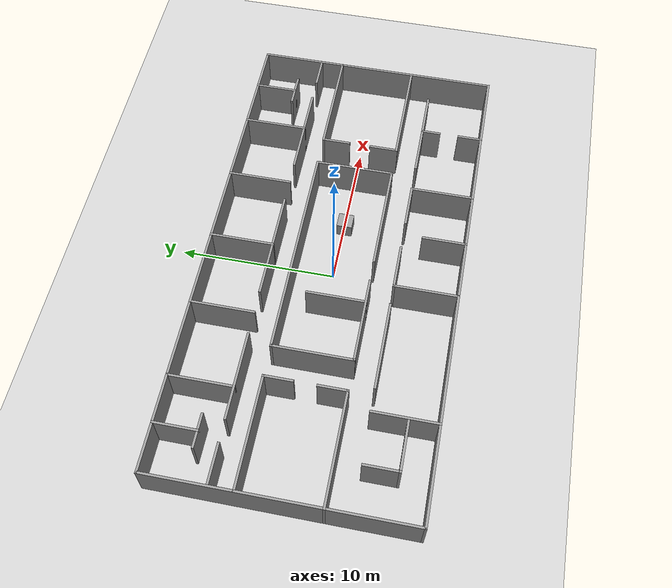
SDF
<sdf version="1.6">
 <world name="default">
  <light name="sun" type="directional">
   <pose>0 0 10 0 -0 0</pose>
   <diffuse>0.8 0.8 0.8 1</diffuse>
   <specular>0.1 0.1 0.1 1</specular>
   <attenuation>
    <range>1000</range>
    <constant>0.9</constant>
    <linear>0.01</linear>
    <quadratic>0.001</quadratic>
   </attenuation>
   <direction>-0.5 0.5 -1</direction>
  </light>
  <model name="ground_plane">
   <static>1</static>
   <link name="link">
    <collision name="collision">
     <geometry><plane><normal>0 0 1</normal><size>100 100</size></plane></geometry>
     <surface><friction><ode><mu>100</mu><mu2>50</mu2></ode></friction></surface>
    </collision>
    <visual name="visual">
     <cast_shadows>0</cast_shadows>
     <geometry><plane><normal>0 0 1</normal><size>100 100</size></plane></geometry>
     <material>
      <script><uri>file://media/materials/scripts/gazebo.material</uri><name>Gazebo/Grey</name></script>
     </material>
    </visual>
   </link>
  </model>
  <gravity>0 0 -9.8</gravity>
  <magnetic_field>6e-06 2.3e-05 -4.2e-05</magnetic_field>
  <atmosphere type="adiabatic"/>
  <physics name="default_physics" default="0" type="ode">
   <max_step_size>0.001</max_step_size>
   <real_time_factor>1</real_time_factor>
   <real_time_update_rate>1000</real_time_update_rate>
  </physics>
  <scene><ambient>0.4 0.4 0.4 1</ambient><background>0.7 0.7 0.7 1</background><shadows>1</shadows></scene>
  <spherical_coordinates>
   <surface_model>EARTH_WGS84</surface_model>
   <latitude_deg>0</latitude_deg>
   <longitude_deg>0</longitude_deg>
   <elevation>0</elevation>
   <heading_deg>0</heading_deg>
  </spherical_coordinates>
  <model name="large">
   <pose>0.175655 -0.035416 0 0 -0 0</pose>
   <link name="Wall_0">
    <collision name="Wall_0_Collision">
     <geometry><box><size>32.15 0.15 2.5</size></box></geometry>
     <pose>0 0 1.25 0 -0 0</pose>
    </collision>
    <visual name="Wall_0_Visual">
     <pose>0 0 1.25 0 -0 0</pose>
     <geometry><box><size>32.15 0.15 2.5</size></box></geometry>
     <material>
      <script><uri>file://media/materials/scripts/gazebo.material</uri><name>Gazebo/Grey</name></script>
      <ambient>1 1 1 1</ambient>
     </material>
    </visual>
    <pose>0 8 0 0 -0 0</pose>
   </link>
   <link name="Wall_1">
    <collision name="Wall_1_Collision">
     <geometry><box><size>16.15 0.15 2.5</size></box></geometry>
     <pose>0 0 1.25 0 -0 0</pose>
    </collision>
    <visual name="Wall_1_Visual">
     <pose>0 0 1.25 0 -0 0</pose>
     <geometry><box><size>16.15 0.15 2.5</size></box></geometry>
     <material>
      <script><uri>file://media/materials/scripts/gazebo.material</uri><name>Gazebo/Grey</name></script>
      <ambient>1 1 1 1</ambient>
     </material>
    </visual>
    <pose>16 0 0 0 0 -1.5708</pose>
   </link>
   <link name="Wall_11">
    <collision name="Wall_11_Collision">
     <geometry><box><size>4.15 0.15 2.5</size></box></geometry>
     <pose>0 0 1.25 0 -0 0</pose>
    </collision>
    <visual name="Wall_11_Visual">
     <pose>0 0 1.25 0 -0 0</pose>
     <geometry><box><size>4.15 0.15 2.5</size></box></geometry>
     <material>
      <script><uri>file://media/materials/scripts/gazebo.material</uri><name>Gazebo/Grey</name></script>
      <ambient>1 1 1 1</ambient>
     </material>
    </visual>
    <pose>5 6 0 0 0 -1.5708</pose>
   </link>
   <link name="Wall_13">
    <collision name="Wall_13_Collision">
     <geometry><box><size>4.15 0.15 2.5</size></box></geometry>
     <pose>0 0 1.25 0 -0 0</pose>
    </collision>
    <visual name="Wall_13_Visual">
     <pose>0 0 1.25 0 -0 0</pose>
     <geometry><box><size>4.15 0.15 2.5</size></box></geometry>
     <material>
      <script><uri>file://media/materials/scripts/gazebo.material</uri><name>Gazebo/Grey</name></script>
      <ambient>1 1 1 1</ambient>
     </material>
    </visual>
    <pose>9.711 6 0 0 0 -1.5708</pose>
   </link>
   <link name="Wall_15">
    <collision name="Wall_15_Collision">
     <geometry><box><size>4.15 0.15 2.5</size></box></geometry>
     <pose>0 0 1.25 0 -0 0</pose>
    </collision>
    <visual name="Wall_15_Visual">
     <pose>0 0 1.25 0 -0 0</pose>
     <geometry><box><size>4.15 0.15 2.5</size></box></geometry>
     <material>
      <script><uri>file://media/materials/scripts/gazebo.material</uri><name>Gazebo/Grey</name></script>
      <ambient>1 1 1 1</ambient>
     </material>
    </visual>
    <pose>-10 -6 0 0 0 -1.5708</pose>
   </link>
   <link name="Wall_17">
    <collision name="Wall_17_Collision">
     <geometry><box><size>4.15 0.15 2.5</size></box></geometry>
     <pose>0 0 1.25 0 -0 0</pose>
    </collision>
    <visual name="Wall_17_Visual">
     <pose>0 0 1.25 0 -0 0</pose>
     <geometry><box><size>4.15 0.15 2.5</size></box></geometry>
     <material>
      <script><uri>file://media/materials/scripts/gazebo.material</uri><name>Gazebo/Grey</name></script>
      <ambient>1 1 1 1</ambient>
     </material>
    </visual>
    <pose>-1.546 -6 0 0 0 -1.5708</pose>
   </link>
   <link name="Wall_19">
    <collision name="Wall_19_Collision">
     <geometry><box><size>4.15 0.15 2.5</size></box></geometry>
     <pose>0 0 1.25 0 -0 0</pose>
    </collision>
    <visual name="Wall_19_Visual">
     <pose>0 0 1.25 0 -0 0</pose>
     <geometry><box><size>4.15 0.15 2.5</size></box></geometry>
     <material>
      <script><uri>file://media/materials/scripts/gazebo.material</uri><name>Gazebo/Grey</name></script>
      <ambient>1 1 1 1</ambient>
     </material>
    </visual>
    <pose>6 -6 0 0 0 -1.5708</pose>
   </link>
   <link name="Wall_2">
    <collision name="Wall_2_Collision">
     <geometry><box><size>32.15 0.15 2.5</size></box></geometry>
     <pose>0 0 1.25 0 -0 0</pose>
    </collision>
    <visual name="Wall_2_Visual">
     <pose>0 0 1.25 0 -0 0</pose>
     <geometry><box><size>32.15 0.15 2.5</size></box></geometry>
     <material>
      <script><uri>file://media/materials/scripts/gazebo.material</uri><name>Gazebo/Grey</name></script>
      <ambient>1 1 1 1</ambient>
     </material>
    </visual>
    <pose>0 -8 0 0 -0 3.14159</pose>
   </link>
   <link name="Wall_21">
    <collision name="Wall_21_Collision">
     <geometry><box><size>2.8 0.15 2.5</size></box></geometry>
     <pose>0 0 1.25 0 -0 0</pose>
    </collision>
    <visual name="Wall_21_Visual">
     <pose>0 0 1.25 0 -0 0</pose>
     <geometry><box><size>2.8 0.15 2.5</size></box></geometry>
     <material>
      <script><uri>file://media/materials/scripts/gazebo.material</uri><name>Gazebo/Grey</name></script>
      <ambient>1 1 1 1</ambient>
     </material>
    </visual>
    <pose>-13 6.675 0 0 0 -1.5708</pose>
   </link>
   <link name="Wall_23">
    <collision name="Wall_23_Collision">
     <geometry><box><size>2.8 0.15 2.5</size></box></geometry>
     <pose>0 0 1.25 0 -0 0</pose>
    </collision>
    <visual name="Wall_23_Visual">
     <pose>0 0 1.25 0 -0 0</pose>
     <geometry><box><size>2.8 0.15 2.5</size></box></geometry>
     <material>
      <script><uri>file://media/materials/scripts/gazebo.material</uri><name>Gazebo/Grey</name></script>
      <ambient>1 1 1 1</ambient>
     </material>
    </visual>
    <pose>12.9648 6.675 0 0 0 -1.5708</pose>
   </link>
   <link name="Wall_25">
    <collision name="Wall_25_Collision">
     <geometry><box><size>1.65 0.15 2.5</size></box></geometry>
     <pose>0 0 1.25 0 -0 0</pose>
    </collision>
    <visual name="Wall_25_Visual">
     <pose>0 0 1.25 0 -0 0</pose>
     <geometry><box><size>1.65 0.15 2.5</size></box></geometry>
     <material>
      <script><uri>file://media/materials/scripts/gazebo.material</uri><name>Gazebo/Grey</name></script>
      <ambient>1 1 1 1</ambient>
     </material>
    </visual>
    <pose>11 -7.25 0 0 -0 1.5708</pose>
   </link>
   <link name="Wall_27">
    <collision name="Wall_27_Collision">
     <geometry><box><size>1.31 0.15 2.5</size></box></geometry>
     <pose>0 0 1.25 0 -0 0</pose>
    </collision>
    <visual name="Wall_27_Visual">
     <pose>0 0 1.25 0 -0 0</pose>
     <geometry><box><size>1.31 0.15 2.5</size></box></geometry>
     <material>
      <script><uri>file://media/materials/scripts/gazebo.material</uri><name>Gazebo/Grey</name></script>
      <ambient>1 1 1 1</ambient>
     </material>
    </visual>
    <pose>11 -4.58 0 0 -0 1.5708</pose>
   </link>
   <link name="Wall_29">
    <collision name="Wall_29_Collision">
     <geometry><box><size>2.15 0.15 2.5</size></box></geometry>
     <pose>0 0 1.25 0 -0 0</pose>
    </collision>
    <visual name="Wall_29_Visual">
     <pose>0 0 1.25 0 -0 0</pose>
     <geometry><box><size>2.15 0.15 2.5</size></box></geometry>
     <material>
      <script><uri>file://media/materials/scripts/gazebo.material</uri><name>Gazebo/Grey</name></script>
      <ambient>1 1 1 1</ambient>
     </material>
    </visual>
    <pose>-13 5.35 0 0 -0 0</pose>
   </link>
   <link name="Wall_3">
    <collision name="Wall_3_Collision">
     <geometry><box><size>16.15 0.15 2.5</size></box></geometry>
     <pose>0 0 1.25 0 -0 0</pose>
    </collision>
    <visual name="Wall_3_Visual">
     <pose>0 0 1.25 0 -0 0</pose>
     <geometry><box><size>16.15 0.15 2.5</size></box></geometry>
     <material>
      <script><uri>file://media/materials/scripts/gazebo.material</uri><name>Gazebo/Grey</name></script>
      <ambient>1 1 1 1</ambient>
     </material>
    </visual>
    <pose>-16 0 0 0 -0 1.5708</pose>
   </link>
   <link name="Wall_31">
    <collision name="Wall_31_Collision">
     <geometry><box><size>2.636 0.15 2.5</size></box></geometry>
     <pose>0 0 1.25 0 -0 0</pose>
    </collision>
    <visual name="Wall_31_Visual">
     <pose>0 0 1.25 0 -0 0</pose>
     <geometry><box><size>2.636 0.15 2.5</size></box></geometry>
     <material>
      <script><uri>file://media/materials/scripts/gazebo.material</uri><name>Gazebo/Grey</name></script>
      <ambient>1 1 1 1</ambient>
     </material>
    </visual>
    <pose>-14.757 4 0 0 -0 0</pose>
   </link>
   <link name="Wall_33">
    <collision name="Wall_33_Collision">
     <geometry><box><size>5.65 0.15 2.5</size></box></geometry>
     <pose>0 0 1.25 0 -0 0</pose>
    </collision>
    <visual name="Wall_33_Visual">
     <pose>0 0 1.25 0 -0 0</pose>
     <geometry><box><size>5.65 0.15 2.5</size></box></geometry>
     <material>
      <script><uri>file://media/materials/scripts/gazebo.material</uri><name>Gazebo/Grey</name></script>
      <ambient>1 1 1 1</ambient>
     </material>
    </visual>
    <pose>-9.25 4 0 0 -0 0</pose>
   </link>
   <link name="Wall_35">
    <collision name="Wall_35_Collision">
     <geometry><box><size>7.15 0.15 2.5</size></box></geometry>
     <pose>0 0 1.25 0 -0 0</pose>
    </collision>
    <visual name="Wall_35_Visual">
     <pose>0 0 1.25 0 -0 0</pose>
     <geometry><box><size>7.15 0.15 2.5</size></box></geometry>
     <material>
      <script><uri>file://media/materials/scripts/gazebo.material</uri><name>Gazebo/Grey</name></script>
      <ambient>1 1 1 1</ambient>
     </material>
    </visual>
    <pose>0 4 0 0 -0 0</pose>
   </link>
   <link name="Wall_37">
    <collision name="Wall_37_Collision">
     <geometry><box><size>6.15 0.15 2.5</size></box></geometry>
     <pose>0 0 1.25 0 -0 0</pose>
    </collision>
    <visual name="Wall_37_Visual">
     <pose>0 0 1.25 0 -0 0</pose>
     <geometry><box><size>6.15 0.15 2.5</size></box></geometry>
     <material>
      <script><uri>file://media/materials/scripts/gazebo.material</uri><name>Gazebo/Grey</name></script>
      <ambient>1 1 1 1</ambient>
     </material>
    </visual>
    <pose>9.5 4 0 0 -0 0</pose>
   </link>
   <link name="Wall_39">
    <collision name="Wall_39_Collision">
     <geometry><box><size>2.15 0.15 2.5</size></box></geometry>
     <pose>0 0 1.25 0 -0 0</pose>
    </collision>
    <visual name="Wall_39_Visual">
     <pose>0 0 1.25 0 -0 0</pose>
     <geometry><box><size>2.15 0.15 2.5</size></box></geometry>
     <material>
      <script><uri>file://media/materials/scripts/gazebo.material</uri><name>Gazebo/Grey</name></script>
      <ambient>1 1 1 1</ambient>
     </material>
    </visual>
    <pose>15 4 0 0 -0 0</pose>
   </link>
   <link name="Wall_41">
    <collision name="Wall_41_Collision">
     <geometry><box><size>2.15 0.15 2.5</size></box></geometry>
     <pose>0 0 1.25 0 -0 0</pose>
    </collision>
    <visual name="Wall_41_Visual">
     <pose>0 0 1.25 0 -0 0</pose>
     <geometry><box><size>2.15 0.15 2.5</size></box></geometry>
     <material>
      <script><uri>file://media/materials/scripts/gazebo.material</uri><name>Gazebo/Grey</name></script>
      <ambient>1 1 1 1</ambient>
     </material>
    </visual>
    <pose>13 5.35 0 0 -0 0</pose>
   </link>
   <link name="Wall_43">
    <collision name="Wall_43_Collision">
     <geometry><box><size>6.25 0.15 2.5</size></box></geometry>
     <pose>0 0 1.25 0 -0 0</pose>
    </collision>
    <visual name="Wall_43_Visual">
     <pose>0 0 1.25 0 -0 0</pose>
     <geometry><box><size>6.25 0.15 2.5</size></box></geometry>
     <material>
      <script><uri>file://media/materials/scripts/gazebo.material</uri><name>Gazebo/Grey</name></script>
      <ambient>1 1 1 1</ambient>
     </material>
    </visual>
    <pose>10.835 -4 0 0 -0 0</pose>
   </link>
   <link name="Wall_45">
    <collision name="Wall_45_Collision">
     <geometry><box><size>7.15 0.15 2.5</size></box></geometry>
     <pose>0 0 1.25 0 -0 0</pose>
    </collision>
    <visual name="Wall_45_Visual">
     <pose>0 0 1.25 0 -0 0</pose>
     <geometry><box><size>7.15 0.15 2.5</size></box></geometry>
     <material>
      <script><uri>file://media/materials/scripts/gazebo.material</uri><name>Gazebo/Grey</name></script>
      <ambient>1 1 1 1</ambient>
     </material>
    </visual>
    <pose>-12.5 2.5 0 0 -0 0</pose>
   </link>
   <link name="Wall_46">
    <collision name="Wall_46_Collision">
     <geometry><box><size>1.9 0.15 2.5</size></box></geometry>
     <pose>0 0 1.25 0 -0 0</pose>
    </collision>
    <visual name="Wall_46_Visual">
     <pose>0 0 1.25 0 -0 0</pose>
     <geometry><box><size>1.9 0.15 2.5</size></box></geometry>
     <material>
      <script><uri>file://media/materials/scripts/gazebo.material</uri><name>Gazebo/Grey</name></script>
      <ambient>1 1 1 1</ambient>
     </material>
    </visual>
    <pose>-9 1.625 0 0 0 -1.5708</pose>
   </link>
   <link name="Wall_48">
    <collision name="Wall_48_Collision">
     <geometry><box><size>1.9 0.15 2.5</size></box></geometry>
     <pose>0 0 1.25 0 -0 0</pose>
    </collision>
    <visual name="Wall_48_Visual">
     <pose>0 0 1.25 0 -0 0</pose>
     <geometry><box><size>1.9 0.15 2.5</size></box></geometry>
     <material>
      <script><uri>file://media/materials/scripts/gazebo.material</uri><name>Gazebo/Grey</name></script>
      <ambient>1 1 1 1</ambient>
     </material>
    </visual>
    <pose>-9 -1.625 0 0 0 -1.5708</pose>
   </link>
   <link name="Wall_49">
    <collision name="Wall_49_Collision">
     <geometry><box><size>7.15 0.15 2.5</size></box></geometry>
     <pose>0 0 1.25 0 -0 0</pose>
    </collision>
    <visual name="Wall_49_Visual">
     <pose>0 0 1.25 0 -0 0</pose>
     <geometry><box><size>7.15 0.15 2.5</size></box></geometry>
     <material>
      <script><uri>file://media/materials/scripts/gazebo.material</uri><name>Gazebo/Grey</name></script>
      <ambient>1 1 1 1</ambient>
     </material>
    </visual>
    <pose>-12.5 -2.5 0 0 -0 3.14159</pose>
   </link>
   <link name="Wall_5">
    <collision name="Wall_5_Collision">
     <geometry><box><size>4.15 0.15 2.5</size></box></geometry>
     <pose>0 0 1.25 0 -0 0</pose>
    </collision>
    <visual name="Wall_5_Visual">
     <pose>0 0 1.25 0 -0 0</pose>
     <geometry><box><size>4.15 0.15 2.5</size></box></geometry>
     <material>
      <script><uri>file://media/materials/scripts/gazebo.material</uri><name>Gazebo/Grey</name></script>
      <ambient>1 1 1 1</ambient>
     </material>
    </visual>
    <pose>-10 6 0 0 0 -1.5708</pose>
   </link>
   <link name="Wall_51">
    <collision name="Wall_51_Collision">
     <geometry><box><size>7.15 0.15 2.5</size></box></geometry>
     <pose>0 0 1.25 0 -0 0</pose>
    </collision>
    <visual name="Wall_51_Visual">
     <pose>0 0 1.25 0 -0 0</pose>
     <geometry><box><size>7.15 0.15 2.5</size></box></geometry>
     <material>
      <script><uri>file://media/materials/scripts/gazebo.material</uri><name>Gazebo/Grey</name></script>
      <ambient>1 1 1 1</ambient>
     </material>
    </visual>
    <pose>12.5 2.5 0 0 -0 3.14159</pose>
   </link>
   <link name="Wall_52">
    <collision name="Wall_52_Collision">
     <geometry><box><size>1.9 0.15 2.5</size></box></geometry>
     <pose>0 0 1.25 0 -0 0</pose>
    </collision>
    <visual name="Wall_52_Visual">
     <pose>0 0 1.25 0 -0 0</pose>
     <geometry><box><size>1.9 0.15 2.5</size></box></geometry>
     <material>
      <script><uri>file://media/materials/scripts/gazebo.material</uri><name>Gazebo/Grey</name></script>
      <ambient>1 1 1 1</ambient>
     </material>
    </visual>
    <pose>9 1.625 0 0 0 -1.5708</pose>
   </link>
   <link name="Wall_54">
    <collision name="Wall_54_Collision">
     <geometry><box><size>1.9 0.15 2.5</size></box></geometry>
     <pose>0 0 1.25 0 -0 0</pose>
    </collision>
    <visual name="Wall_54_Visual">
     <pose>0 0 1.25 0 -0 0</pose>
     <geometry><box><size>1.9 0.15 2.5</size></box></geometry>
     <material>
      <script><uri>file://media/materials/scripts/gazebo.material</uri><name>Gazebo/Grey</name></script>
      <ambient>1 1 1 1</ambient>
     </material>
    </visual>
    <pose>9 -1.625 0 0 0 -1.5708</pose>
   </link>
   <link name="Wall_55">
    <collision name="Wall_55_Collision">
     <geometry><box><size>7.15 0.15 2.5</size></box></geometry>
     <pose>0 0 1.25 0 -0 0</pose>
    </collision>
    <visual name="Wall_55_Visual">
     <pose>0 0 1.25 0 -0 0</pose>
     <geometry><box><size>7.15 0.15 2.5</size></box></geometry>
     <material>
      <script><uri>file://media/materials/scripts/gazebo.material</uri><name>Gazebo/Grey</name></script>
      <ambient>1 1 1 1</ambient>
     </material>
    </visual>
    <pose>12.5 -2.5 0 0 -0 0</pose>
   </link>
   <link name="Wall_57">
    <collision name="Wall_57_Collision">
     <geometry><box><size>5.15 0.15 2.5</size></box></geometry>
     <pose>0 0 1.25 0 -0 0</pose>
    </collision>
    <visual name="Wall_57_Visual">
     <pose>0 0 1.25 0 -0 0</pose>
     <geometry><box><size>5.15 0.15 2.5</size></box></geometry>
     <material>
      <script><uri>file://media/materials/scripts/gazebo.material</uri><name>Gazebo/Grey</name></script>
      <ambient>1 1 1 1</ambient>
     </material>
    </visual>
    <pose>-7 0 0 0 0 -1.5708</pose>
   </link>
   <link name="Wall_58">
    <collision name="Wall_58_Collision">
     <geometry><box><size>5.65 0.15 2.5</size></box></geometry>
     <pose>0 0 1.25 0 -0 0</pose>
    </collision>
    <visual name="Wall_58_Visual">
     <pose>0 0 1.25 0 -0 0</pose>
     <geometry><box><size>5.65 0.15 2.5</size></box></geometry>
     <material>
      <script><uri>file://media/materials/scripts/gazebo.material</uri><name>Gazebo/Grey</name></script>
      <ambient>1 1 1 1</ambient>
     </material>
    </visual>
    <pose>-4.25 -2.5 0 0 -0 0</pose>
   </link>
   <link name="Wall_60">
    <collision name="Wall_60_Collision">
     <geometry><box><size>7.15 0.15 2.5</size></box></geometry>
     <pose>0 0 1.25 0 -0 0</pose>
    </collision>
    <visual name="Wall_60_Visual">
     <pose>0 0 1.25 0 -0 0</pose>
     <geometry><box><size>7.15 0.15 2.5</size></box></geometry>
     <material>
      <script><uri>file://media/materials/scripts/gazebo.material</uri><name>Gazebo/Grey</name></script>
      <ambient>1 1 1 1</ambient>
     </material>
    </visual>
    <pose>3.5 -2.5 0 0 -0 0</pose>
   </link>
   <link name="Wall_61">
    <collision name="Wall_61_Collision">
     <geometry><box><size>5.15012 0.15 2.5</size></box></geometry>
     <pose>0 0 1.25 0 -0 0</pose>
    </collision>
    <visual name="Wall_61_Visual">
     <pose>0 0 1.25 0 -0 0</pose>
     <geometry><box><size>5.15012 0.15 2.5</size></box></geometry>
     <material>
      <script><uri>file://media/materials/scripts/gazebo.material</uri><name>Gazebo/Grey</name></script>
      <ambient>1 1 1 1</ambient>
     </material>
    </visual>
    <pose>7 0 0 0 -0 1.5708</pose>
   </link>
   <link name="Wall_62">
    <collision name="Wall_62_Collision">
     <geometry><box><size>14.15 0.15 2.5</size></box></geometry>
     <pose>0 0 1.25 0 -0 0</pose>
    </collision>
    <visual name="Wall_62_Visual">
     <pose>0 0 1.25 0 -0 0</pose>
     <geometry><box><size>14.15 0.15 2.5</size></box></geometry>
     <material>
      <script><uri>file://media/materials/scripts/gazebo.material</uri><name>Gazebo/Grey</name></script>
      <ambient>1 1 1 1</ambient>
     </material>
    </visual>
    <pose>0 2.5 0 0 -0 3.14159</pose>
   </link>
   <link name="Wall_64">
    <collision name="Wall_64_Collision">
     <geometry><box><size>5.75 0.15 2.5</size></box></geometry>
     <pose>0 0 1.25 0 -0 0</pose>
    </collision>
    <visual name="Wall_64_Visual">
     <pose>0 0 1.25 0 -0 0</pose>
     <geometry><box><size>5.75 0.15 2.5</size></box></geometry>
     <material>
      <script><uri>file://media/materials/scripts/gazebo.material</uri><name>Gazebo/Grey</name></script>
      <ambient>1 1 1 1</ambient>
     </material>
    </visual>
    <pose>-5.712 -4 0 0 -0 0</pose>
   </link>
   <link name="Wall_66">
    <collision name="Wall_66_Collision">
     <geometry><box><size>3 0.15 2.5</size></box></geometry>
     <pose>0 0 1.25 0 -0 0</pose>
    </collision>
    <visual name="Wall_66_Visual">
     <pose>0 0 1.25 0 -0 0</pose>
     <geometry><box><size>3 0.15 2.5</size></box></geometry>
     <material>
      <script><uri>file://media/materials/scripts/gazebo.material</uri><name>Gazebo/Grey</name></script>
      <ambient>1 1 1 1</ambient>
     </material>
    </visual>
    <pose>-0.121 -4 0 0 -0 0</pose>
   </link>
   <link name="Wall_68">
    <collision name="Wall_68_Collision">
     <geometry><box><size>2.913 0.15 2.5</size></box></geometry>
     <pose>0 0 1.25 0 -0 0</pose>
    </collision>
    <visual name="Wall_68_Visual">
     <pose>0 0 1.25 0 -0 0</pose>
     <geometry><box><size>2.913 0.15 2.5</size></box></geometry>
     <material>
      <script><uri>file://media/materials/scripts/gazebo.material</uri><name>Gazebo/Grey</name></script>
      <ambient>1 1 1 1</ambient>
     </material>
    </visual>
    <pose>4.6185 -4 0 0 -0 3.14159</pose>
   </link>
   <link name="Wall_7">
    <collision name="Wall_7_Collision">
     <geometry><box><size>4.15 0.15 2.5</size></box></geometry>
     <pose>0 0 1.25 0 -0 0</pose>
    </collision>
    <visual name="Wall_7_Visual">
     <pose>0 0 1.25 0 -0 0</pose>
     <geometry><box><size>4.15 0.15 2.5</size></box></geometry>
     <material>
      <script><uri>file://media/materials/scripts/gazebo.material</uri><name>Gazebo/Grey</name></script>
      <ambient>1 1 1 1</ambient>
     </material>
    </visual>
    <pose>-5 6 0 0 0 -1.5708</pose>
   </link>
   <link name="Wall_70">
    <collision name="Wall_70_Collision">
     <geometry><box><size>2.884 0.15 2.5</size></box></geometry>
     <pose>0 0 1.25 0 -0 0</pose>
    </collision>
    <visual name="Wall_70_Visual">
     <pose>0 0 1.25 0 -0 0</pose>
     <geometry><box><size>2.884 0.15 2.5</size></box></geometry>
     <material>
      <script><uri>file://media/materials/scripts/gazebo.material</uri><name>Gazebo/Grey</name></script>
      <ambient>1 1 1 1</ambient>
     </material>
    </visual>
    <pose>2.323 -6.633 0 0 0 -1.5708</pose>
   </link>
   <link name="Wall_72">
    <collision name="Wall_72_Collision">
     <geometry><box><size>2.25 0.15 2.5</size></box></geometry>
     <pose>0 0 1.25 0 -0 0</pose>
    </collision>
    <visual name="Wall_72_Visual">
     <pose>0 0 1.25 0 -0 0</pose>
     <geometry><box><size>2.25 0.15 2.5</size></box></geometry>
     <material>
      <script><uri>file://media/materials/scripts/gazebo.material</uri><name>Gazebo/Grey</name></script>
      <ambient>1 1 1 1</ambient>
     </material>
    </visual>
    <pose>-13.1902 -5.15498 0 0 0 -1.57056</pose>
   </link>
   <link name="Wall_73">
    <collision name="Wall_73_Collision">
     <geometry><box><size>3.34 0.15 2.5</size></box></geometry>
     <pose>0 0 1.25 0 -0 0</pose>
    </collision>
    <visual name="Wall_73_Visual">
     <pose>0 0 1.25 0 -0 0</pose>
     <geometry><box><size>3.34 0.15 2.5</size></box></geometry>
     <material>
      <script><uri>file://media/materials/scripts/gazebo.material</uri><name>Gazebo/Grey</name></script>
      <ambient>1 1 1 1</ambient>
     </material>
    </visual>
    <pose>-11.595 -6.205 0 0 -0 0</pose>
   </link>
   <link name="Wall_75">
    <collision name="Wall_75_Collision">
     <geometry><box><size>3.822 0.15 2.5</size></box></geometry>
     <pose>0 0 1.25 0 -0 0</pose>
    </collision>
    <visual name="Wall_75_Visual">
     <pose>0 0 1.25 0 -0 0</pose>
     <geometry><box><size>3.822 0.15 2.5</size></box></geometry>
     <material>
      <script><uri>file://media/materials/scripts/gazebo.material</uri><name>Gazebo/Grey</name></script>
      <ambient>1 1 1 1</ambient>
     </material>
    </visual>
    <pose>-3 -0.664 0 0 0 -1.5708</pose>
   </link>
   <link name="Wall_9">
    <collision name="Wall_9_Collision">
     <geometry><box><size>4.15 0.15 2.5</size></box></geometry>
     <pose>0 0 1.25 0 -0 0</pose>
    </collision>
    <visual name="Wall_9_Visual">
     <pose>0 0 1.25 0 -0 0</pose>
     <geometry><box><size>4.15 0.15 2.5</size></box></geometry>
     <material>
      <script><uri>file://media/materials/scripts/gazebo.material</uri><name>Gazebo/Grey</name></script>
      <ambient>1 1 1 1</ambient>
     </material>
    </visual>
    <pose>0 6 0 0 0 -1.5708</pose>
   </link>
   <static>1</static>
  </model>
  <model name="unit_box_0">
   <pose>3.86746 -0.059471 0.5 0 -0 0</pose>
   <link name="link">
    <inertial>
     <mass>1</mass>
     <inertia>
      <ixx>0.166667</ixx>
      <ixy>0</ixy>
      <ixz>0</ixz>
      <iyy>0.166667</iyy>
      <iyz>0</iyz>
      <izz>0.166667</izz>
     </inertia>
    </inertial>
    <collision name="collision"><geometry><box><size>1 1 1</size></box></geometry></collision>
    <visual name="visual">
     <geometry><box><size>1 1 1</size></box></geometry>
     <material>
      <script><name>Gazebo/Grey</name><uri>file://media/materials/scripts/gazebo.material</uri></script>
     </material>
    </visual>
   </link>
  </model>
 </world>
</sdf>
